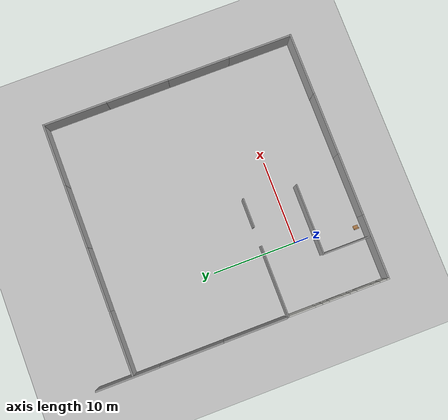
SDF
<sdf version="1.6">
 <world name="default">
  <light name="sun" type="directional">
   <pose>0 0 10 0 -0 0</pose>
   <diffuse>0.8 0.8 0.8 1</diffuse>
   <specular>0.2 0.2 0.2 1</specular>
   <attenuation>
    <range>1000</range>
    <constant>0.9</constant>
    <linear>0.01</linear>
    <quadratic>0.001</quadratic>
   </attenuation>
   <direction>-0.5 0.1 -0.9</direction>
  </light>
  <model name="ground_plane">
   <static>1</static>
   <link name="link">
    <collision name="collision">
     <geometry><plane><normal>0 0 1</normal><size>100 100</size></plane></geometry>
     <surface><friction><ode><mu>100</mu><mu2>50</mu2></ode></friction></surface>
    </collision>
    <visual name="visual">
     <cast_shadows>0</cast_shadows>
     <geometry><plane><normal>0 0 1</normal><size>100 100</size></plane></geometry>
     <material>
      <script><uri>file://media/materials/scripts/gazebo.material</uri><name>Gazebo/Grey</name></script>
     </material>
    </visual>
   </link>
  </model>
  <gravity>0 0 -9.8</gravity>
  <magnetic_field>6e-06 2.3e-05 -4.2e-05</magnetic_field>
  <atmosphere type="adiabatic"/>
  <physics name="default_physics" default="0" type="ode">
   <max_step_size>0.001</max_step_size>
   <real_time_factor>1</real_time_factor>
   <real_time_update_rate>1000</real_time_update_rate>
  </physics>
  <scene><ambient>0.4 0.4 0.4 1</ambient><background>0.7 0.7 0.7 1</background><shadows>1</shadows></scene>
  <spherical_coordinates>
   <surface_model>EARTH_WGS84</surface_model>
   <latitude_deg>0</latitude_deg>
   <longitude_deg>0</longitude_deg>
   <elevation>0</elevation>
   <heading_deg>0</heading_deg>
  </spherical_coordinates>
  <model name="wall_short_window_tiles">
   <pose>-7.40493 -2.08854 0 0 -0 0</pose>
   <link name="Wall_0">
    <pose>0 -0 0 0 -0 -1.5708</pose>
    <visual name="Wall_0_Visual_0">
     <pose>-4.43927 0 1.25 0 -0 0</pose>
     <geometry><box><size>3.12146 0.15 2.5</size></box></geometry>
     <material>
      <script><uri>file://media/materials/scripts/gazebo.material</uri><name>Gazebo/CeilingTiled</name></script>
      <ambient>1 1 1 1</ambient>
     </material>
     <meta><layer>0</layer></meta>
    </visual>
    <collision name="Wall_0_Collision_0">
     <geometry><box><size>3.12146 0.15 2.5</size></box></geometry>
     <pose>-4.43927 0 1.25 0 -0 0</pose>
    </collision>
    <visual name="Wall_0_Visual_1">
     <pose>1.56073 0 0.25 0 -0 0</pose>
     <geometry><box><size>8.87854 0.15 0.5</size></box></geometry>
     <material>
      <script><uri>file://media/materials/scripts/gazebo.material</uri><name>Gazebo/CeilingTiled</name></script>
      <ambient>1 1 1 1</ambient>
     </material>
     <meta><layer>0</layer></meta>
    </visual>
    <collision name="Wall_0_Collision_1">
     <geometry><box><size>8.87854 0.15 0.5</size></box></geometry>
     <pose>1.56073 0 0.25 0 -0 0</pose>
    </collision>
    <visual name="Wall_0_Visual_2">
     <pose>-2.05062 0 1.5 0 -0 0</pose>
     <geometry><box><size>0.055833 0.15 2</size></box></geometry>
     <material>
      <script><uri>file://media/materials/scripts/gazebo.material</uri><name>Gazebo/CeilingTiled</name></script>
      <ambient>1 1 1 1</ambient>
     </material>
     <meta><layer>0</layer></meta>
    </visual>
    <collision name="Wall_0_Collision_2">
     <geometry><box><size>0.055833 0.15 2</size></box></geometry>
     <pose>-2.05062 0 1.5 0 -0 0</pose>
    </collision>
    <visual name="Wall_0_Visual_3">
     <pose>-0.423181 0 1.5 0 -0 0</pose>
     <geometry><box><size>1.59905 0.15 2</size></box></geometry>
     <material>
      <script><uri>file://media/materials/scripts/gazebo.material</uri><name>Gazebo/CeilingTiled</name></script>
      <ambient>1 1 1 1</ambient>
     </material>
     <meta><layer>0</layer></meta>
    </visual>
    <collision name="Wall_0_Collision_3">
     <geometry><box><size>1.59905 0.15 2</size></box></geometry>
     <pose>-0.423181 0 1.5 0 -0 0</pose>
    </collision>
    <visual name="Wall_0_Visual_4">
     <pose>1.21525 0 1.5 0 -0 0</pose>
     <geometry><box><size>0.077807 0.15 2</size></box></geometry>
     <material>
      <script><uri>file://media/materials/scripts/gazebo.material</uri><name>Gazebo/CeilingTiled</name></script>
      <ambient>1 1 1 1</ambient>
     </material>
     <meta><layer>0</layer></meta>
    </visual>
    <collision name="Wall_0_Collision_4">
     <geometry><box><size>0.077807 0.15 2</size></box></geometry>
     <pose>1.21525 0 1.5 0 -0 0</pose>
    </collision>
    <visual name="Wall_0_Visual_5">
     <pose>3.0227 0 1.5 0 -0 0</pose>
     <geometry><box><size>1.9371 0.15 2</size></box></geometry>
     <material>
      <script><uri>file://media/materials/scripts/gazebo.material</uri><name>Gazebo/CeilingTiled</name></script>
      <ambient>1 1 1 1</ambient>
     </material>
     <meta><layer>0</layer></meta>
    </visual>
    <collision name="Wall_0_Collision_5">
     <geometry><box><size>1.9371 0.15 2</size></box></geometry>
     <pose>3.0227 0 1.5 0 -0 0</pose>
    </collision>
    <visual name="Wall_0_Visual_6">
     <pose>4.81917 0 1.5 0 -0 0</pose>
     <geometry><box><size>0.055833 0.15 2</size></box></geometry>
     <material>
      <script><uri>file://media/materials/scripts/gazebo.material</uri><name>Gazebo/CeilingTiled</name></script>
      <ambient>1 1 1 1</ambient>
     </material>
     <meta><layer>0</layer></meta>
    </visual>
    <collision name="Wall_0_Collision_6">
     <geometry><box><size>0.055833 0.15 2</size></box></geometry>
     <pose>4.81917 0 1.5 0 -0 0</pose>
    </collision>
    <visual name="Wall_0_Visual_7">
     <pose>5.82354 0 1.5 0 -0 0</pose>
     <geometry><box><size>0.352917 0.15 2</size></box></geometry>
     <material>
      <script><uri>file://media/materials/scripts/gazebo.material</uri><name>Gazebo/CeilingTiled</name></script>
      <ambient>1 1 1 1</ambient>
     </material>
     <meta><layer>0</layer></meta>
    </visual>
    <collision name="Wall_0_Collision_7">
     <geometry><box><size>0.352917 0.15 2</size></box></geometry>
     <pose>5.82354 0 1.5 0 -0 0</pose>
    </collision>
    <visual name="Wall_0_Visual_8">
     <pose>-2.47854 0 1.9 0 -0 0</pose>
     <geometry><box><size>0.8 0.15 1.2</size></box></geometry>
     <material>
      <script><uri>file://media/materials/scripts/gazebo.material</uri><name>Gazebo/CeilingTiled</name></script>
      <ambient>1 1 1 1</ambient>
     </material>
     <meta><layer>0</layer></meta>
    </visual>
    <collision name="Wall_0_Collision_8">
     <geometry><box><size>0.8 0.15 1.2</size></box></geometry>
     <pose>-2.47854 0 1.9 0 -0 0</pose>
    </collision>
    <visual name="Wall_0_Visual_9">
     <pose>-1.62271 0 1.9 0 -0 0</pose>
     <geometry><box><size>0.8 0.15 1.2</size></box></geometry>
     <material>
      <script><uri>file://media/materials/scripts/gazebo.material</uri><name>Gazebo/CeilingTiled</name></script>
      <ambient>1 1 1 1</ambient>
     </material>
     <meta><layer>0</layer></meta>
    </visual>
    <collision name="Wall_0_Collision_9">
     <geometry><box><size>0.8 0.15 1.2</size></box></geometry>
     <pose>-1.62271 0 1.9 0 -0 0</pose>
    </collision>
    <visual name="Wall_0_Visual_10">
     <pose>0.776344 0 1.9 0 -0 0</pose>
     <geometry><box><size>0.8 0.15 1.2</size></box></geometry>
     <material>
      <script><uri>file://media/materials/scripts/gazebo.material</uri><name>Gazebo/CeilingTiled</name></script>
      <ambient>1 1 1 1</ambient>
     </material>
     <meta><layer>0</layer></meta>
    </visual>
    <collision name="Wall_0_Collision_10">
     <geometry><box><size>0.8 0.15 1.2</size></box></geometry>
     <pose>0.776344 0 1.9 0 -0 0</pose>
    </collision>
    <visual name="Wall_0_Visual_11">
     <pose>1.65415 0 1.9 0 -0 0</pose>
     <geometry><box><size>0.8 0.15 1.2</size></box></geometry>
     <material>
      <script><uri>file://media/materials/scripts/gazebo.material</uri><name>Gazebo/CeilingTiled</name></script>
      <ambient>1 1 1 1</ambient>
     </material>
     <meta><layer>0</layer></meta>
    </visual>
    <collision name="Wall_0_Collision_11">
     <geometry><box><size>0.8 0.15 1.2</size></box></geometry>
     <pose>1.65415 0 1.9 0 -0 0</pose>
    </collision>
    <visual name="Wall_0_Visual_12">
     <pose>4.39125 0 1.9 0 -0 0</pose>
     <geometry><box><size>0.8 0.15 1.2</size></box></geometry>
     <material>
      <script><uri>file://media/materials/scripts/gazebo.material</uri><name>Gazebo/CeilingTiled</name></script>
      <ambient>1 1 1 1</ambient>
     </material>
     <meta><layer>0</layer></meta>
    </visual>
    <collision name="Wall_0_Collision_12">
     <geometry><box><size>0.8 0.15 1.2</size></box></geometry>
     <pose>4.39125 0 1.9 0 -0 0</pose>
    </collision>
    <visual name="Wall_0_Visual_13">
     <pose>5.24708 0 1.9 0 -0 0</pose>
     <geometry><box><size>0.8 0.15 1.2</size></box></geometry>
     <material>
      <script><uri>file://media/materials/scripts/gazebo.material</uri><name>Gazebo/CeilingTiled</name></script>
      <ambient>1 1 1 1</ambient>
     </material>
     <meta><layer>0</layer></meta>
    </visual>
    <collision name="Wall_0_Collision_13">
     <geometry><box><size>0.8 0.15 1.2</size></box></geometry>
     <pose>5.24708 0 1.9 0 -0 0</pose>
    </collision>
   </link>
   <static>1</static>
  </model>
  <model name="grey_wall">
   <static>1</static>
   <link name="link">
    <pose>0 0 1.4 0 -0 0</pose>
    <collision name="collision"><geometry><box><size>7.5 0.2 2.8</size></box></geometry></collision>
    <visual name="visual">
     <cast_shadows>0</cast_shadows>
     <geometry><box><size>7.5 0.2 2.8</size></box></geometry>
     <material>
      <script>
       <uri>model://grey_wall/materials/scripts</uri>
       <uri>model://grey_wall/materials/textures</uri>
       <name>vrc/grey_wall</name>
      </script>
     </material>
    </visual>
   </link>
   <pose>-3.50898 -7.90798 0 0 -0 0</pose>
  </model>
  <model name="grey_wall_0">
   <static>1</static>
   <link name="link">
    <pose>0 0 1.4 0 -0 0</pose>
    <collision name="collision"><geometry><box><size>7.5 0.2 2.8</size></box></geometry></collision>
    <visual name="visual">
     <cast_shadows>0</cast_shadows>
     <geometry><box><size>7.5 0.2 2.8</size></box></geometry>
     <material>
      <script>
       <uri>model://grey_wall/materials/scripts</uri>
       <uri>model://grey_wall/materials/textures</uri>
       <name>vrc/grey_wall</name>
      </script>
     </material>
    </visual>
   </link>
   <pose>3.96686 -7.90618 0 0 -0 0</pose>
  </model>
  <model name="grey_wall_1">
   <static>1</static>
   <link name="link">
    <pose>0 0 1.4 0 -0 0</pose>
    <collision name="collision"><geometry><box><size>7.5 0.2 2.8</size></box></geometry></collision>
    <visual name="visual">
     <cast_shadows>0</cast_shadows>
     <geometry><box><size>7.5 0.2 2.8</size></box></geometry>
     <material>
      <script>
       <uri>model://grey_wall/materials/scripts</uri>
       <uri>model://grey_wall/materials/textures</uri>
       <name>vrc/grey_wall</name>
      </script>
     </material>
    </visual>
   </link>
   <pose>11.414 -7.89646 0 0 -0 0</pose>
  </model>
  <model name="grey_wall_2">
   <static>1</static>
   <link name="link">
    <pose>0 0 1.4 0 -0 0</pose>
    <collision name="collision"><geometry><box><size>7.5 0.2 2.8</size></box></geometry></collision>
    <visual name="visual">
     <cast_shadows>0</cast_shadows>
     <geometry><box><size>7.5 0.2 2.8</size></box></geometry>
     <material>
      <script>
       <uri>model://grey_wall/materials/scripts</uri>
       <uri>model://grey_wall/materials/textures</uri>
       <name>vrc/grey_wall</name>
      </script>
     </material>
    </visual>
   </link>
   <pose>18.9114 -7.88239 0 0 -0 0</pose>
  </model>
  <model name="grey_wall_3_clone">
   <static>1</static>
   <link name="link">
    <pose>0 0 1.4 0 -0 0</pose>
    <collision name="collision"><geometry><box><size>7.5 0.2 2.8</size></box></geometry></collision>
    <visual name="visual">
     <cast_shadows>0</cast_shadows>
     <geometry><box><size>7.5 0.2 2.8</size></box></geometry>
     <material>
      <script>
       <uri>model://grey_wall/materials/scripts</uri>
       <uri>model://grey_wall/materials/textures</uri>
       <name>vrc/grey_wall</name>
      </script>
     </material>
    </visual>
   </link>
   <pose>22.5467 -4.03911 0 0 -0 1.5708</pose>
  </model>
  <model name="grey_wall_3_clone_0">
   <static>1</static>
   <link name="link">
    <pose>0 0 1.4 0 -0 0</pose>
    <collision name="collision"><geometry><box><size>7.5 0.2 2.8</size></box></geometry></collision>
    <visual name="visual">
     <cast_shadows>0</cast_shadows>
     <geometry><box><size>7.5 0.2 2.8</size></box></geometry>
     <material>
      <script>
       <uri>model://grey_wall/materials/scripts</uri>
       <uri>model://grey_wall/materials/textures</uri>
       <name>vrc/grey_wall</name>
      </script>
     </material>
    </visual>
   </link>
   <pose>22.5556 3.44839 0 0 -0 1.5708</pose>
  </model>
  <model name="grey_wall_3_clone_1">
   <static>1</static>
   <link name="link">
    <pose>0 0 1.4 0 -0 0</pose>
    <collision name="collision"><geometry><box><size>7.5 0.2 2.8</size></box></geometry></collision>
    <visual name="visual">
     <cast_shadows>0</cast_shadows>
     <geometry><box><size>7.5 0.2 2.8</size></box></geometry>
     <material>
      <script>
       <uri>model://grey_wall/materials/scripts</uri>
       <uri>model://grey_wall/materials/textures</uri>
       <name>vrc/grey_wall</name>
      </script>
     </material>
    </visual>
   </link>
   <pose>22.5573 10.9563 0 0 -0 1.5708</pose>
  </model>
  <model name="grey_wall_3_clone_2">
   <static>1</static>
   <link name="link">
    <pose>0 0 1.4 0 -0 0</pose>
    <collision name="collision"><geometry><box><size>7.5 0.2 2.8</size></box></geometry></collision>
    <visual name="visual">
     <cast_shadows>0</cast_shadows>
     <geometry><box><size>7.5 0.2 2.8</size></box></geometry>
     <material>
      <script>
       <uri>model://grey_wall/materials/scripts</uri>
       <uri>model://grey_wall/materials/textures</uri>
       <name>vrc/grey_wall</name>
      </script>
     </material>
    </visual>
   </link>
   <pose>22.5615 18.4721 0 0 -0 1.5708</pose>
  </model>
  <model name="grey_wall_3_clone_3">
   <static>1</static>
   <link name="link">
    <pose>0 0 1.4 0 -0 0</pose>
    <collision name="collision"><geometry><box><size>7.5 0.2 2.8</size></box></geometry></collision>
    <visual name="visual">
     <cast_shadows>0</cast_shadows>
     <geometry><box><size>7.5 0.2 2.8</size></box></geometry>
     <material>
      <script>
       <uri>model://grey_wall/materials/scripts</uri>
       <uri>model://grey_wall/materials/textures</uri>
       <name>vrc/grey_wall</name>
      </script>
     </material>
    </visual>
   </link>
   <pose>-7.4257 7.95451 0 0 -0 1.5708</pose>
  </model>
  <model name="grey_wall_0_clone">
   <static>1</static>
   <link name="link">
    <pose>0 0 1.4 0 -0 0</pose>
    <collision name="collision"><geometry><box><size>7.5 0.2 2.8</size></box></geometry></collision>
    <visual name="visual">
     <cast_shadows>0</cast_shadows>
     <geometry><box><size>7.5 0.2 2.8</size></box></geometry>
     <material>
      <script>
       <uri>model://grey_wall/materials/scripts</uri>
       <uri>model://grey_wall/materials/textures</uri>
       <name>vrc/grey_wall</name>
      </script>
     </material>
    </visual>
   </link>
   <pose>18.9088 22.3214 0 0 -0 0</pose>
  </model>
  <model name="grey_wall_0_clone_0">
   <static>1</static>
   <link name="link">
    <pose>0 0 1.4 0 -0 0</pose>
    <collision name="collision"><geometry><box><size>7.5 0.2 2.8</size></box></geometry></collision>
    <visual name="visual">
     <cast_shadows>0</cast_shadows>
     <geometry><box><size>7.5 0.2 2.8</size></box></geometry>
     <material>
      <script>
       <uri>model://grey_wall/materials/scripts</uri>
       <uri>model://grey_wall/materials/textures</uri>
       <name>vrc/grey_wall</name>
      </script>
     </material>
    </visual>
   </link>
   <pose>11.4155 22.3248 0 0 -0 0</pose>
  </model>
  <model name="grey_wall_0_clone_1">
   <static>1</static>
   <link name="link">
    <pose>0 0 1.4 0 -0 0</pose>
    <collision name="collision"><geometry><box><size>7.5 0.2 2.8</size></box></geometry></collision>
    <visual name="visual">
     <cast_shadows>0</cast_shadows>
     <geometry><box><size>7.5 0.2 2.8</size></box></geometry>
     <material>
      <script>
       <uri>model://grey_wall/materials/scripts</uri>
       <uri>model://grey_wall/materials/textures</uri>
       <name>vrc/grey_wall</name>
      </script>
     </material>
    </visual>
   </link>
   <pose>3.90845 22.3226 0 0 -0 0</pose>
  </model>
  <model name="grey_wall_0_clone_2">
   <static>1</static>
   <link name="link">
    <pose>0 0 1.4 0 -0 0</pose>
    <collision name="collision"><geometry><box><size>7.5 0.2 2.8</size></box></geometry></collision>
    <visual name="visual">
     <cast_shadows>0</cast_shadows>
     <geometry><box><size>7.5 0.2 2.8</size></box></geometry>
     <material>
      <script>
       <uri>model://grey_wall/materials/scripts</uri>
       <uri>model://grey_wall/materials/textures</uri>
       <name>vrc/grey_wall</name>
      </script>
     </material>
    </visual>
   </link>
   <pose>-3.61637 22.3124 0 0 -0 0</pose>
  </model>
  <model name="grey_wall_3_clone_3_clone">
   <static>1</static>
   <link name="link">
    <pose>0 0 1.4 0 -0 0</pose>
    <collision name="collision"><geometry><box><size>7.5 0.2 2.8</size></box></geometry></collision>
    <visual name="visual">
     <cast_shadows>0</cast_shadows>
     <geometry><box><size>7.5 0.2 2.8</size></box></geometry>
     <material>
      <script>
       <uri>model://grey_wall/materials/scripts</uri>
       <uri>model://grey_wall/materials/textures</uri>
       <name>vrc/grey_wall</name>
      </script>
     </material>
    </visual>
   </link>
   <pose>-7.43638 15.4682 0 0 -0 1.5708</pose>
  </model>
  <model name="grey_wall_3_clone_3_clone_0">
   <static>1</static>
   <link name="link">
    <pose>0 0 1.4 0 -0 0</pose>
    <collision name="collision"><geometry><box><size>7.5 0.2 2.8</size></box></geometry></collision>
    <visual name="visual">
     <cast_shadows>0</cast_shadows>
     <geometry><box><size>7.5 0.2 2.8</size></box></geometry>
     <material>
      <script>
       <uri>model://grey_wall/materials/scripts</uri>
       <uri>model://grey_wall/materials/textures</uri>
       <name>vrc/grey_wall</name>
      </script>
     </material>
    </visual>
   </link>
   <pose>-7.4463 22.9455 0 0 -0 1.5708</pose>
  </model>
  <model name="wooden_case">
   <link name="base">
    <pose>0 0 0.024 0 -0 0</pose>
    <inertial>
     <pose>-0.022184 0 0.171592 0 -0 0</pose>
     <mass>3.96264</mass>
     <inertia>
      <ixx>0.213536</ixx>
      <ixy>0</ixy>
      <ixz>0.000779377</ixz>
      <iyy>0.0708943</iyy>
      <iyz>0</iyz>
      <izz>0.154604</izz>
     </inertia>
    </inertial>
    <collision name="collision_back">
     <pose>-0.053975 0 0.1778 0 -0 0</pose>
     <geometry><box><size>0.01905 0.5461 0.3175</size></box></geometry>
     <surface>
      <contact>
       <poissons_ratio>0.347</poissons_ratio>
       <elastic_modulus>8.8e+09</elastic_modulus>
       <ode><kp>100000</kp><kd>100</kd><max_vel>100</max_vel><min_depth>0.001</min_depth></ode>
      </contact>
      <friction>
       <torsional>
        <coefficient>1</coefficient>
        <use_patch_radius>0</use_patch_radius>
        <surface_radius>0.01</surface_radius>
       </torsional>
      </friction>
     </surface>
    </collision>
    <visual name="visual_back">
     <pose>-0.053975 0 0.1778 0 -0 0</pose>
     <geometry><box><size>0.01905 0.5461 0.3175</size></box></geometry>
     <material>
      <script><uri>file://media/materials/scripts/gazebo.material</uri><name>Gazebo/Wood</name></script>
     </material>
    </visual>
    <collision name="collision_bottom">
     <pose>0 0 0.009525 0 -0 0</pose>
     <geometry><box><size>0.127 0.5842 0.01905</size></box></geometry>
     <surface>
      <contact>
       <poissons_ratio>0.347</poissons_ratio>
       <elastic_modulus>8.8e+09</elastic_modulus>
       <ode><kp>100000</kp><kd>100</kd><max_vel>100</max_vel><min_depth>0.001</min_depth></ode>
      </contact>
      <friction>
       <torsional>
        <coefficient>1</coefficient>
        <use_patch_radius>0</use_patch_radius>
        <surface_radius>0.01</surface_radius>
       </torsional>
      </friction>
     </surface>
    </collision>
    <visual name="visual_bottom">
     <pose>0 0 0.009525 0 -0 0</pose>
     <geometry><box><size>0.127 0.5842 0.01905</size></box></geometry>
     <material>
      <script><uri>file://media/materials/scripts/gazebo.material</uri><name>Gazebo/Wood</name></script>
     </material>
    </visual>
    <collision name="collision_top">
     <pose>0 0 0.346075 0 -0 0</pose>
     <geometry><box><size>0.127 0.5842 0.01905</size></box></geometry>
     <surface>
      <contact>
       <poissons_ratio>0.347</poissons_ratio>
       <elastic_modulus>8.8e+09</elastic_modulus>
       <ode><kp>100000</kp><kd>100</kd><max_vel>100</max_vel><min_depth>0.001</min_depth></ode>
      </contact>
      <friction>
       <torsional>
        <coefficient>1</coefficient>
        <use_patch_radius>0</use_patch_radius>
        <surface_radius>0.01</surface_radius>
       </torsional>
      </friction>
     </surface>
    </collision>
    <visual name="visual_top">
     <pose>0 0 0.346075 0 -0 0</pose>
     <geometry><box><size>0.127 0.5842 0.01905</size></box></geometry>
     <material>
      <script><uri>file://media/materials/scripts/gazebo.material</uri><name>Gazebo/Wood</name></script>
     </material>
    </visual>
    <collision name="collision_left">
     <pose>0 -0.282575 0.1778 0 -0 0</pose>
     <geometry><box><size>0.127 0.01905 0.3175</size></box></geometry>
     <surface>
      <contact>
       <poissons_ratio>0.347</poissons_ratio>
       <elastic_modulus>8.8e+09</elastic_modulus>
       <ode><kp>100000</kp><kd>100</kd><max_vel>100</max_vel><min_depth>0.001</min_depth></ode>
      </contact>
      <friction>
       <torsional>
        <coefficient>1</coefficient>
        <use_patch_radius>0</use_patch_radius>
        <surface_radius>0.01</surface_radius>
       </torsional>
      </friction>
     </surface>
    </collision>
    <visual name="visual_left">
     <pose>0 -0.282575 0.1778 0 -0 0</pose>
     <geometry><box><size>0.127 0.01905 0.3175</size></box></geometry>
     <material>
      <script><uri>file://media/materials/scripts/gazebo.material</uri><name>Gazebo/Wood</name></script>
     </material>
    </visual>
    <collision name="collision_right">
     <pose>0 0.282575 0.1778 0 -0 0</pose>
     <geometry><box><size>0.127 0.01905 0.3175</size></box></geometry>
     <surface>
      <contact>
       <poissons_ratio>0.347</poissons_ratio>
       <elastic_modulus>8.8e+09</elastic_modulus>
       <ode><kp>100000</kp><kd>100</kd><max_vel>100</max_vel><min_depth>0.001</min_depth></ode>
      </contact>
      <friction>
       <torsional>
        <coefficient>1</coefficient>
        <use_patch_radius>0</use_patch_radius>
        <surface_radius>0.01</surface_radius>
       </torsional>
      </friction>
     </surface>
    </collision>
    <visual name="visual_right">
     <pose>0 0.282575 0.1778 0 -0 0</pose>
     <geometry><box><size>0.127 0.01905 0.3175</size></box></geometry>
     <material>
      <script><uri>file://media/materials/scripts/gazebo.material</uri><name>Gazebo/Wood</name></script>
     </material>
    </visual>
    <collision name="collision_block_left">
     <pose>0.0095 -0.2151 -0.012 0 -0 0</pose>
     <geometry><box><size>0.108 0.05 0.024</size></box></geometry>
     <surface>
      <contact>
       <poissons_ratio>0.347</poissons_ratio>
       <elastic_modulus>8.8e+09</elastic_modulus>
       <ode><kp>100000</kp><kd>100</kd><max_vel>100</max_vel><min_depth>0.001</min_depth></ode>
      </contact>
      <friction>
       <torsional>
        <coefficient>1</coefficient>
        <use_patch_radius>0</use_patch_radius>
        <surface_radius>0.01</surface_radius>
       </torsional>
      </friction>
     </surface>
    </collision>
    <visual name="visual_block_left">
     <pose>0.0095 -0.2151 -0.012 0 -0 0</pose>
     <geometry><box><size>0.108 0.05 0.024</size></box></geometry>
     <material>
      <script><uri>file://media/materials/scripts/gazebo.material</uri><name>Gazebo/Wood</name></script>
     </material>
    </visual>
    <collision name="collision_block_right">
     <pose>0.0095 0.2151 -0.012 0 -0 0</pose>
     <geometry><box><size>0.108 0.05 0.024</size></box></geometry>
     <surface>
      <contact>
       <poissons_ratio>0.347</poissons_ratio>
       <elastic_modulus>8.8e+09</elastic_modulus>
       <ode><kp>100000</kp><kd>100</kd><max_vel>100</max_vel><min_depth>0.001</min_depth></ode>
      </contact>
      <friction>
       <torsional>
        <coefficient>1</coefficient>
        <use_patch_radius>0</use_patch_radius>
        <surface_radius>0.01</surface_radius>
       </torsional>
      </friction>
     </surface>
    </collision>
    <visual name="visual_block_right">
     <pose>0.0095 0.2151 -0.012 0 -0 0</pose>
     <geometry><box><size>0.108 0.05 0.024</size></box></geometry>
     <material>
      <script><uri>file://media/materials/scripts/gazebo.material</uri><name>Gazebo/Wood</name></script>
     </material>
    </visual>
   </link>
   <link name="lid">
    <pose>0.243775 0 0.009525 0 -0 0</pose>
    <inertial>
     <mass>1.97874</mass>
     <inertia>
      <ixx>0.0563367</ixx>
      <ixy>0</ixy>
      <ixz>0</ixz>
      <iyy>0.020911</iyy>
      <iyz>0</iyz>
      <izz>0.0771281</izz>
     </inertia>
    </inertial>
    <collision name="collision">
     <geometry><box><size>0.3556 0.5842 0.01905</size></box></geometry>
     <surface>
      <contact>
       <poissons_ratio>0.347</poissons_ratio>
       <elastic_modulus>8.8e+09</elastic_modulus>
       <ode><kp>100000</kp><kd>100</kd><max_vel>100</max_vel><min_depth>0.001</min_depth></ode>
      </contact>
      <friction>
       <torsional>
        <coefficient>1</coefficient>
        <use_patch_radius>0</use_patch_radius>
        <surface_radius>0.01</surface_radius>
       </torsional>
      </friction>
     </surface>
    </collision>
    <visual name="visual">
     <geometry><box><size>0.3556 0.5842 0.01905</size></box></geometry>
     <material>
      <script><uri>file://media/materials/scripts/gazebo.material</uri><name>Gazebo/Wood</name></script>
     </material>
    </visual>
    <visual name="tee_nut_1">
     <pose>0.122 -0.216 0 0 -0 0</pose>
     <geometry><cylinder><radius>0.00635</radius><length>0.0192405</length></cylinder></geometry>
     <material>
      <script><uri>file://media/materials/scripts/gazebo.material</uri><name>Gazebo/Grey</name></script>
     </material>
    </visual>
    <visual name="tee_nut_2">
     <pose>0.122 -0.088 0 0 -0 0</pose>
     <geometry><cylinder><radius>0.00635</radius><length>0.0192405</length></cylinder></geometry>
     <material>
      <script><uri>file://media/materials/scripts/gazebo.material</uri><name>Gazebo/Grey</name></script>
     </material>
    </visual>
    <visual name="tee_nut_3">
     <pose>0.122 0.088 0 0 -0 0</pose>
     <geometry><cylinder><radius>0.00635</radius><length>0.0192405</length></cylinder></geometry>
     <material>
      <script><uri>file://media/materials/scripts/gazebo.material</uri><name>Gazebo/Grey</name></script>
     </material>
    </visual>
    <visual name="tee_nut_4">
     <pose>0.122 0.216 0 0 -0 0</pose>
     <geometry><cylinder><radius>0.00635</radius><length>0.0192405</length></cylinder></geometry>
     <material>
      <script><uri>file://media/materials/scripts/gazebo.material</uri><name>Gazebo/Grey</name></script>
     </material>
    </visual>
   </link>
   <joint name="lid_hinge" type="revolute">
    <pose>-0.1778 0 0.01905 0 -0 0</pose>
    <parent>base</parent>
    <child>lid</child>
    <axis>
     <xyz>0 1 0</xyz>
     <limit><upper>0.523599</upper><lower>-1.5708</lower></limit>
     <use_parent_model_frame>0</use_parent_model_frame>
     <dynamics><spring_reference>0</spring_reference><spring_stiffness>0</spring_stiffness></dynamics>
    </axis>
   </joint>
   <pose>-0.989883 -7.24811 0 0 -0 0</pose>
  </model>
  <model name="wall_8_5m_0">
   <pose>-3.226130 4.0 0 0 -0 0.0</pose>
   <link name="Wall_3">
    <collision name="Wall_3_Collision">
     <geometry><box><size>8.5 0.15 2.5</size></box></geometry>
     <pose>0 0 1.25 0 -0 0</pose>
    </collision>
    <visual name="Wall_3_Visual">
     <pose>0 0 1.25 0 -0 0</pose>
     <geometry><box><size>8.5 0.15 2.5</size></box></geometry>
     <material>
      <script><uri>file://media/materials/scripts/gazebo.material</uri><name>Gazebo/Grey</name></script>
      <ambient>1 1 1 1</ambient>
     </material>
     <meta><layer>0</layer></meta>
    </visual>
   </link>
   <static>1</static>
  </model>
  <model name="wall_3_5m_0">
   <pose>5.0 4.0 0 0 -0 0</pose>
   <link name="Wall_5">
    <collision name="Wall_5_Collision">
     <geometry><box><size>3.5 0.15 2.5</size></box></geometry>
     <pose>0 0 1.25 0 -0 0</pose>
    </collision>
    <visual name="Wall_5_Visual">
     <pose>0 0 1.25 0 -0 0</pose>
     <geometry><box><size>3.5 0.15 2.5</size></box></geometry>
     <material>
      <script><uri>file://media/materials/scripts/gazebo.material</uri><name>Gazebo/Grey</name></script>
      <ambient>1 1 1 1</ambient>
     </material>
     <meta><layer>0</layer></meta>
    </visual>
   </link>
   <static>1</static>
  </model>
  <model name="wall_5_5m_0">
   <pose>-2.3 -5.05 0 0 -0 1.5707</pose>
   <link name="Wall_7">
    <collision name="Wall_7_Collision">
     <geometry><box><size>5.5 0.15 2.5</size></box></geometry>
     <pose>0 0 1.25 0 -0 0</pose>
    </collision>
    <visual name="Wall_7_Visual">
     <pose>0 0 1.25 0 -0 0</pose>
     <geometry><box><size>5.5 0.15 2.5</size></box></geometry>
     <material>
      <script><uri>file://media/materials/scripts/gazebo.material</uri><name>Gazebo/Grey</name></script>
      <ambient>1 1 1 1</ambient>
     </material>
     <meta><layer>0</layer></meta>
    </visual>
   </link>
   <static>1</static>
  </model>
  <model name="wall_8_5m">
   <pose>1.875 -2.22 0 0 -0 0</pose>
   <link name="Wall_3">
    <collision name="Wall_3_Collision">
     <geometry><box><size>8.5 0.15 2.5</size></box></geometry>
     <pose>0 0 1.25 0 -0 0</pose>
    </collision>
    <visual name="Wall_3_Visual">
     <pose>0 0 1.25 0 -0 0</pose>
     <geometry><box><size>8.5 0.15 2.5</size></box></geometry>
     <material>
      <script><uri>file://media/materials/scripts/gazebo.material</uri><name>Gazebo/Grey</name></script>
      <ambient>1 1 1 1</ambient>
     </material>
     <meta><layer>0</layer></meta>
    </visual>
   </link>
   <static>1</static>
  </model>
 </world>
</sdf>
